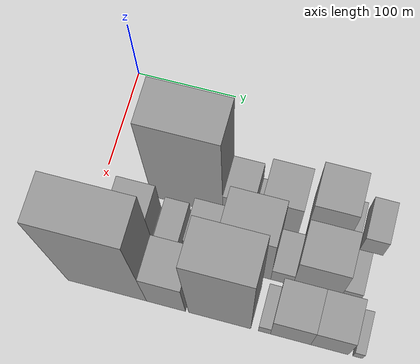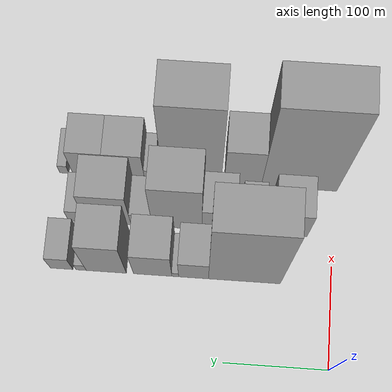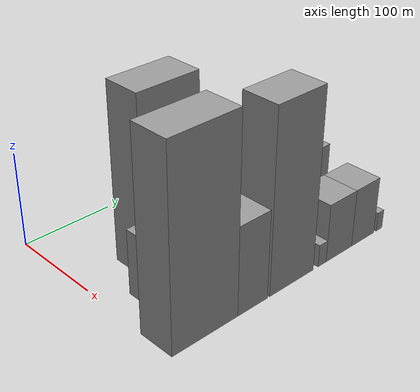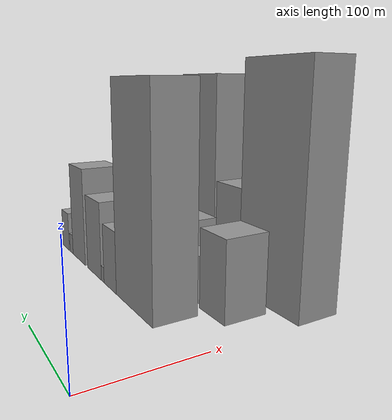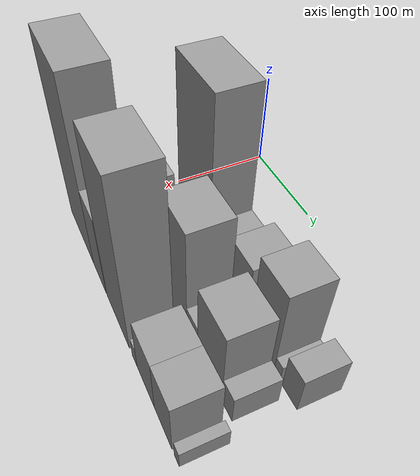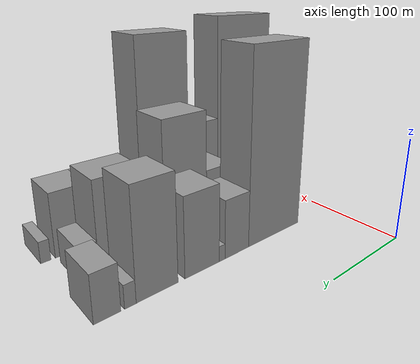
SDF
<sdf version="1.6">
 <world name="default">
  <model name="building_16">
   <static>1</static>
   <pose>100.0000 84.3406 0 0.000000 0.000000 0.000000</pose>
   <link name="link">
    <pose>0 0 93.00 0 0 0</pose>
    <collision name="collision"><geometry><box><size>40.0000 70.0272 186.0000</size></box></geometry></collision>
    <visual name="visual">
     <cast_shadows>0</cast_shadows>
     <geometry><box><size>40.0000 70.0272 186.0000</size></box></geometry>
     <material>
      <script>
       <uri>model://grey_wall/materials/scripts</uri>
       <uri>model://grey_wall/materials/textures</uri>
       <name>vrc/grey_wall</name>
      </script>
     </material>
    </visual>
   </link>
  </model>
  <model name="building_17">
   <static>1</static>
   <pose>100.0000 133.8959 0 0.000000 0.000000 0.000000</pose>
   <link name="link">
    <pose>0 0 28.50 0 0 0</pose>
    <collision name="collision"><geometry><box><size>40.0000 29.0835 57.0000</size></box></geometry></collision>
    <visual name="visual">
     <cast_shadows>0</cast_shadows>
     <geometry><box><size>40.0000 29.0835 57.0000</size></box></geometry>
     <material>
      <script>
       <uri>model://grey_wall/materials/scripts</uri>
       <uri>model://grey_wall/materials/textures</uri>
       <name>vrc/grey_wall</name>
      </script>
     </material>
    </visual>
   </link>
  </model>
  <model name="building_18">
   <static>1</static>
   <pose>100.0000 151.7411 0 0.000000 0.000000 0.000000</pose>
   <link name="link">
    <pose>0 0 7.50 0 0 0</pose>
    <collision name="collision"><geometry><box><size>40.0000 6.6067 15.0000</size></box></geometry></collision>
    <visual name="visual">
     <cast_shadows>0</cast_shadows>
     <geometry><box><size>40.0000 6.6067 15.0000</size></box></geometry>
     <material>
      <script>
       <uri>model://grey_wall/materials/scripts</uri>
       <uri>model://grey_wall/materials/textures</uri>
       <name>vrc/grey_wall</name>
      </script>
     </material>
    </visual>
   </link>
  </model>
  <model name="building_19">
   <static>1</static>
   <pose>100.0000 173.7985 0 0.000000 0.000000 0.000000</pose>
   <link name="link">
    <pose>0 0 37.50 0 0 0</pose>
    <collision name="collision"><geometry><box><size>40.0000 37.5081 75.0000</size></box></geometry></collision>
    <visual name="visual">
     <cast_shadows>0</cast_shadows>
     <geometry><box><size>40.0000 37.5081 75.0000</size></box></geometry>
     <material>
      <script>
       <uri>model://grey_wall/materials/scripts</uri>
       <uri>model://grey_wall/materials/textures</uri>
       <name>vrc/grey_wall</name>
      </script>
     </material>
    </visual>
   </link>
  </model>
  <model name="building_20">
   <static>1</static>
   <pose>100.0000 219.1859 0 0.000000 0.000000 0.000000</pose>
   <link name="link">
    <pose>0 0 49.50 0 0 0</pose>
    <collision name="collision"><geometry><box><size>40.0000 39.2666 99.0000</size></box></geometry></collision>
    <visual name="visual">
     <cast_shadows>0</cast_shadows>
     <geometry><box><size>40.0000 39.2666 99.0000</size></box></geometry>
     <material>
      <script>
       <uri>model://grey_wall/materials/scripts</uri>
       <uri>model://grey_wall/materials/textures</uri>
       <name>vrc/grey_wall</name>
      </script>
     </material>
    </visual>
   </link>
  </model>
  <model name="building_21">
   <static>1</static>
   <pose>100.0000 243.8342 0 0.000000 0.000000 0.000000</pose>
   <link name="link">
    <pose>0 0 10.50 0 0 0</pose>
    <collision name="collision"><geometry><box><size>40.0000 10.0301 21.0000</size></box></geometry></collision>
    <visual name="visual">
     <cast_shadows>0</cast_shadows>
     <geometry><box><size>40.0000 10.0301 21.0000</size></box></geometry>
     <material>
      <script>
       <uri>model://grey_wall/materials/scripts</uri>
       <uri>model://grey_wall/materials/textures</uri>
       <name>vrc/grey_wall</name>
      </script>
     </material>
    </visual>
   </link>
  </model>
  <model name="building_22">
   <static>1</static>
   <pose>100.0000 262.9086 0 0.000000 0.000000 0.000000</pose>
   <link name="link">
    <pose>0 0 21.00 0 0 0</pose>
    <collision name="collision"><geometry><box><size>40.0000 22.1185 42.0000</size></box></geometry></collision>
    <visual name="visual">
     <cast_shadows>0</cast_shadows>
     <geometry><box><size>40.0000 22.1185 42.0000</size></box></geometry>
     <material>
      <script>
       <uri>model://grey_wall/materials/scripts</uri>
       <uri>model://grey_wall/materials/textures</uri>
       <name>vrc/grey_wall</name>
      </script>
     </material>
    </visual>
   </link>
  </model>
  <model name="building_47">
   <static>1</static>
   <pose>149.0000 43.0082 0 0.000000 0.000000 0.000000</pose>
   <link name="link">
    <pose>0 0 34.50 0 0 0</pose>
    <collision name="collision"><geometry><box><size>40.0000 35.7730 69.0000</size></box></geometry></collision>
    <visual name="visual">
     <cast_shadows>0</cast_shadows>
     <geometry><box><size>40.0000 35.7730 69.0000</size></box></geometry>
     <material>
      <script>
       <uri>model://grey_wall/materials/scripts</uri>
       <uri>model://grey_wall/materials/textures</uri>
       <name>vrc/grey_wall</name>
      </script>
     </material>
    </visual>
   </link>
  </model>
  <model name="building_48">
   <static>1</static>
   <pose>149.0000 79.2917 0 0.000000 0.000000 0.000000</pose>
   <link name="link">
    <pose>0 0 21.00 0 0 0</pose>
    <collision name="collision"><geometry><box><size>40.0000 22.7939 42.0000</size></box></geometry></collision>
    <visual name="visual">
     <cast_shadows>0</cast_shadows>
     <geometry><box><size>40.0000 22.7939 42.0000</size></box></geometry>
     <material>
      <script>
       <uri>model://grey_wall/materials/scripts</uri>
       <uri>model://grey_wall/materials/textures</uri>
       <name>vrc/grey_wall</name>
      </script>
     </material>
    </visual>
   </link>
  </model>
  <model name="building_49">
   <static>1</static>
   <pose>149.0000 112.8790 0 0.000000 0.000000 0.000000</pose>
   <link name="link">
    <pose>0 0 31.50 0 0 0</pose>
    <collision name="collision"><geometry><box><size>40.0000 32.3808 63.0000</size></box></geometry></collision>
    <visual name="visual">
     <cast_shadows>0</cast_shadows>
     <geometry><box><size>40.0000 32.3808 63.0000</size></box></geometry>
     <material>
      <script>
       <uri>model://grey_wall/materials/scripts</uri>
       <uri>model://grey_wall/materials/textures</uri>
       <name>vrc/grey_wall</name>
      </script>
     </material>
    </visual>
   </link>
  </model>
  <model name="building_50">
   <static>1</static>
   <pose>149.0000 153.6038 0 0.000000 0.000000 0.000000</pose>
   <link name="link">
    <pose>0 0 61.50 0 0 0</pose>
    <collision name="collision"><geometry><box><size>40.0000 49.0689 123.0000</size></box></geometry></collision>
    <visual name="visual">
     <cast_shadows>0</cast_shadows>
     <geometry><box><size>40.0000 49.0689 123.0000</size></box></geometry>
     <material>
      <script>
       <uri>model://grey_wall/materials/scripts</uri>
       <uri>model://grey_wall/materials/textures</uri>
       <name>vrc/grey_wall</name>
      </script>
     </material>
    </visual>
   </link>
  </model>
  <model name="building_51">
   <static>1</static>
   <pose>149.0000 188.7272 0 0.000000 0.000000 0.000000</pose>
   <link name="link">
    <pose>0 0 18.00 0 0 0</pose>
    <collision name="collision"><geometry><box><size>40.0000 21.1778 36.0000</size></box></geometry></collision>
    <visual name="visual">
     <cast_shadows>0</cast_shadows>
     <geometry><box><size>40.0000 21.1778 36.0000</size></box></geometry>
     <material>
      <script>
       <uri>model://grey_wall/materials/scripts</uri>
       <uri>model://grey_wall/materials/textures</uri>
       <name>vrc/grey_wall</name>
      </script>
     </material>
    </visual>
   </link>
  </model>
  <model name="building_52">
   <static>1</static>
   <pose>149.0000 221.8408 0 0.000000 0.000000 0.000000</pose>
   <link name="link">
    <pose>0 0 43.50 0 0 0</pose>
    <collision name="collision"><geometry><box><size>40.0000 45.0494 87.0000</size></box></geometry></collision>
    <visual name="visual">
     <cast_shadows>0</cast_shadows>
     <geometry><box><size>40.0000 45.0494 87.0000</size></box></geometry>
     <material>
      <script>
       <uri>model://grey_wall/materials/scripts</uri>
       <uri>model://grey_wall/materials/textures</uri>
       <name>vrc/grey_wall</name>
      </script>
     </material>
    </visual>
   </link>
  </model>
  <model name="building_53">
   <static>1</static>
   <pose>149.0000 252.9647 0 0.000000 0.000000 0.000000</pose>
   <link name="link">
    <pose>0 0 16.50 0 0 0</pose>
    <collision name="collision"><geometry><box><size>40.0000 17.1985 33.0000</size></box></geometry></collision>
    <visual name="visual">
     <cast_shadows>0</cast_shadows>
     <geometry><box><size>40.0000 17.1985 33.0000</size></box></geometry>
     <material>
      <script>
       <uri>model://grey_wall/materials/scripts</uri>
       <uri>model://grey_wall/materials/textures</uri>
       <name>vrc/grey_wall</name>
      </script>
     </material>
    </visual>
   </link>
  </model>
  <model name="building_73">
   <static>1</static>
   <pose>198.0000 35.1176 0 0.000000 0.000000 0.000000</pose>
   <link name="link">
    <pose>0 0 100.50 0 0 0</pose>
    <collision name="collision"><geometry><box><size>40.0000 75.8104 201.0000</size></box></geometry></collision>
    <visual name="visual">
     <cast_shadows>0</cast_shadows>
     <geometry><box><size>40.0000 75.8104 201.0000</size></box></geometry>
     <material>
      <script>
       <uri>model://grey_wall/materials/scripts</uri>
       <uri>model://grey_wall/materials/textures</uri>
       <name>vrc/grey_wall</name>
      </script>
     </material>
    </visual>
   </link>
  </model>
  <model name="building_74">
   <static>1</static>
   <pose>198.0000 91.5755 0 0.000000 0.000000 0.000000</pose>
   <link name="link">
    <pose>0 0 46.50 0 0 0</pose>
    <collision name="collision"><geometry><box><size>40.0000 37.1055 93.0000</size></box></geometry></collision>
    <visual name="visual">
     <cast_shadows>0</cast_shadows>
     <geometry><box><size>40.0000 37.1055 93.0000</size></box></geometry>
     <material>
      <script>
       <uri>model://grey_wall/materials/scripts</uri>
       <uri>model://grey_wall/materials/textures</uri>
       <name>vrc/grey_wall</name>
      </script>
     </material>
    </visual>
   </link>
  </model>
  <model name="building_75">
   <static>1</static>
   <pose>198.0000 142.4606 0 0.000000 0.000000 0.000000</pose>
   <link name="link">
    <pose>0 0 94.50 0 0 0</pose>
    <collision name="collision"><geometry><box><size>40.0000 58.6647 189.0000</size></box></geometry></collision>
    <visual name="visual">
     <cast_shadows>0</cast_shadows>
     <geometry><box><size>40.0000 58.6647 189.0000</size></box></geometry>
     <material>
      <script>
       <uri>model://grey_wall/materials/scripts</uri>
       <uri>model://grey_wall/materials/textures</uri>
       <name>vrc/grey_wall</name>
      </script>
     </material>
    </visual>
   </link>
  </model>
  <model name="building_76">
   <static>1</static>
   <pose>198.0000 184.5098 0 0.000000 0.000000 0.000000</pose>
   <link name="link">
    <pose>0 0 12.00 0 0 0</pose>
    <collision name="collision"><geometry><box><size>40.0000 11.4339 24.0000</size></box></geometry></collision>
    <visual name="visual">
     <cast_shadows>0</cast_shadows>
     <geometry><box><size>40.0000 11.4339 24.0000</size></box></geometry>
     <material>
      <script>
       <uri>model://grey_wall/materials/scripts</uri>
       <uri>model://grey_wall/materials/textures</uri>
       <name>vrc/grey_wall</name>
      </script>
     </material>
    </visual>
   </link>
  </model>
  <model name="building_77">
   <static>1</static>
   <pose>198.0000 209.0477 0 0.000000 0.000000 0.000000</pose>
   <link name="link">
    <pose>0 0 31.50 0 0 0</pose>
    <collision name="collision"><geometry><box><size>40.0000 37.6418 63.0000</size></box></geometry></collision>
    <visual name="visual">
     <cast_shadows>0</cast_shadows>
     <geometry><box><size>40.0000 37.6418 63.0000</size></box></geometry>
     <material>
      <script>
       <uri>model://grey_wall/materials/scripts</uri>
       <uri>model://grey_wall/materials/textures</uri>
       <name>vrc/grey_wall</name>
      </script>
     </material>
    </visual>
   </link>
  </model>
  <model name="building_78">
   <static>1</static>
   <pose>198.0000 245.2040 0 0.000000 0.000000 0.000000</pose>
   <link name="link">
    <pose>0 0 31.50 0 0 0</pose>
    <collision name="collision"><geometry><box><size>40.0000 34.6708 63.0000</size></box></geometry></collision>
    <visual name="visual">
     <cast_shadows>0</cast_shadows>
     <geometry><box><size>40.0000 34.6708 63.0000</size></box></geometry>
     <material>
      <script>
       <uri>model://grey_wall/materials/scripts</uri>
       <uri>model://grey_wall/materials/textures</uri>
       <name>vrc/grey_wall</name>
      </script>
     </material>
    </visual>
   </link>
  </model>
  <model name="building_79">
   <static>1</static>
   <pose>198.0000 271.1131 0 0.000000 0.000000 0.000000</pose>
   <link name="link">
    <pose>0 0 10.50 0 0 0</pose>
    <collision name="collision"><geometry><box><size>40.0000 9.1474 21.0000</size></box></geometry></collision>
    <visual name="visual">
     <cast_shadows>0</cast_shadows>
     <geometry><box><size>40.0000 9.1474 21.0000</size></box></geometry>
     <material>
      <script>
       <uri>model://grey_wall/materials/scripts</uri>
       <uri>model://grey_wall/materials/textures</uri>
       <name>vrc/grey_wall</name>
      </script>
     </material>
    </visual>
   </link>
  </model>
 </world>
</sdf>
